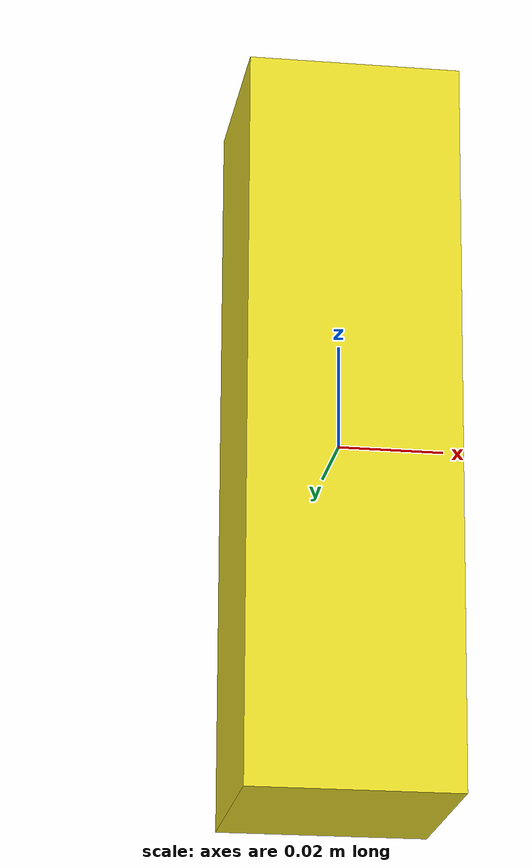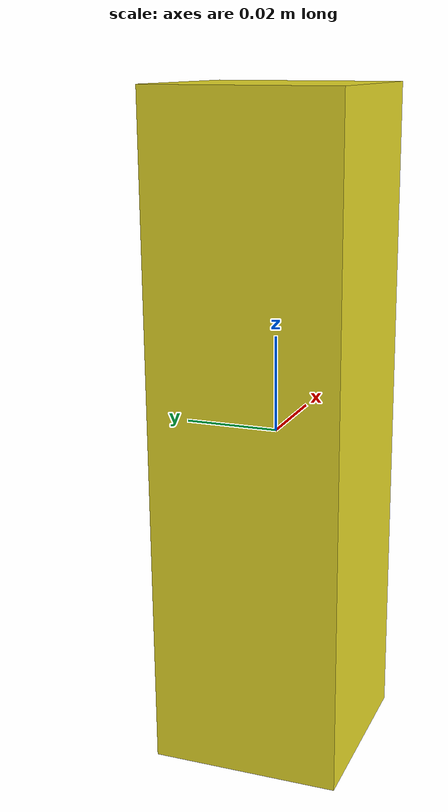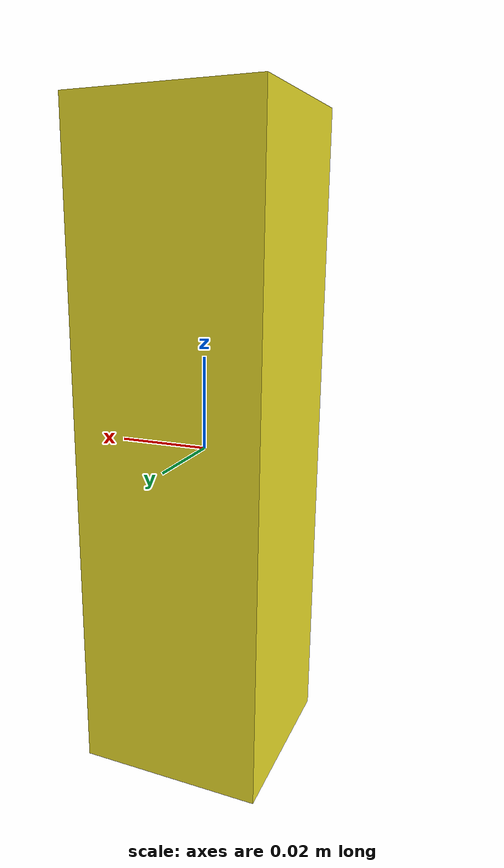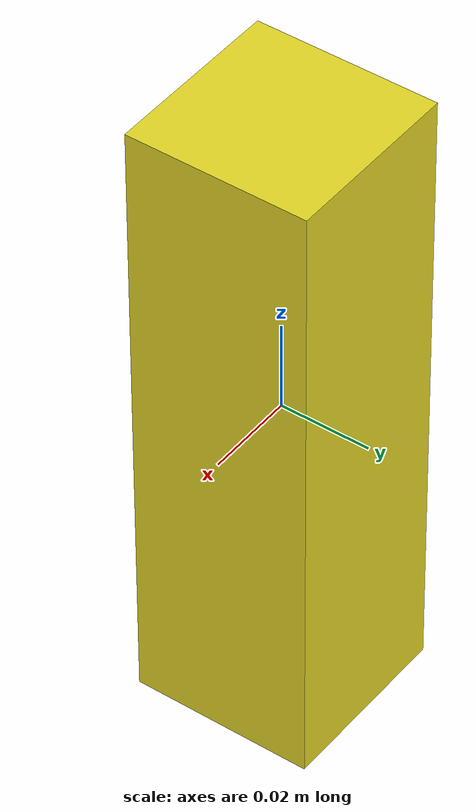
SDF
<?xml version="1.0" ?>
<sdf version='1.4'>
  <model name="yellow_rectangle">
      <static>0</static>
      <link name='yellow_rectangle_link'>
        <inertial>
          <mass>0.25</mass>
          <inertia>
            <ixx>0.000041667</ixx>
            <ixy>0.000000</ixy>
            <ixz>0.000000</ixz>
            <iyy>0.000041667</iyy>
            <iyz>0.000000</iyz>
            <izz>0.000041667</izz>
          </inertia>
        </inertial>
        <visual name='visual'>
          <geometry>
            <box>
              <size>0.040 0.040 0.140</size>
            </box>
          </geometry>
          <material>
            <script>
              <uri>file://media/materials/scripts/gazebo.material</uri>
              <name>Gazebo/Yellow</name>
            </script>
          </material>
        </visual>
        <collision name='collision'>
          <geometry>
            <box>
              <size>0.04 0.04 0.140</size>
            </box>
          </geometry>
          <surface>
            <friction>
              <ode>
                <mu>60.0</mu>
                <mu2>60.0</mu2>
              </ode>
            </friction>
            <contact>
              <ode>
                <kp>1000000.0</kp>
                <kd>100.0</kd>
                <max_vel>1.0</max_vel>
                <min_depth>0.0025</min_depth>
              </ode>
            </contact>
          </surface>
        </collision>
        <velocity_decay>
          <linear>0.000000</linear>
          <angular>0.000000</angular>
        </velocity_decay>
        <self_collide>0</self_collide>
        <kinematic>0</kinematic>
        <gravity>1</gravity>
      </link>
    <plugin name="p3d_base_controller" filename="libgazebo_ros_p3d.so">
        <!-- Link to which the plugin is attached -->
        <bodyName>yellow_rectangle_link</bodyName>
        <!-- ROS topic name to publish the pose information -->
        <topicName>yellow_rectangle</topicName>
        <!-- Frame name for the TF -->
        <frameName>world</frameName>
        <!-- Update rate in Hz -->
        <updateRate>30.0</updateRate>
        <!-- Gaussian noise magnitude -->
        <gaussianNoise>0.01</gaussianNoise>
    </plugin>
  </model>
</sdf>
